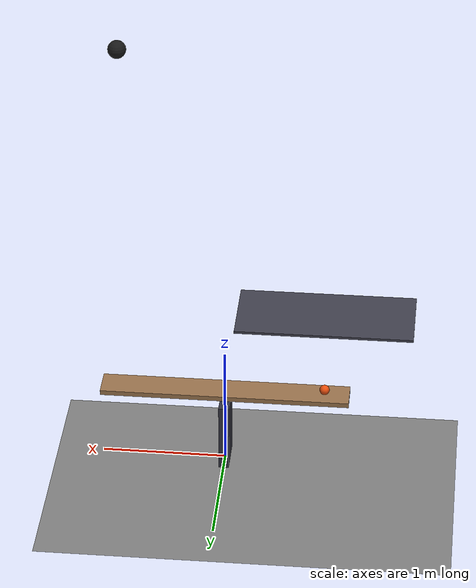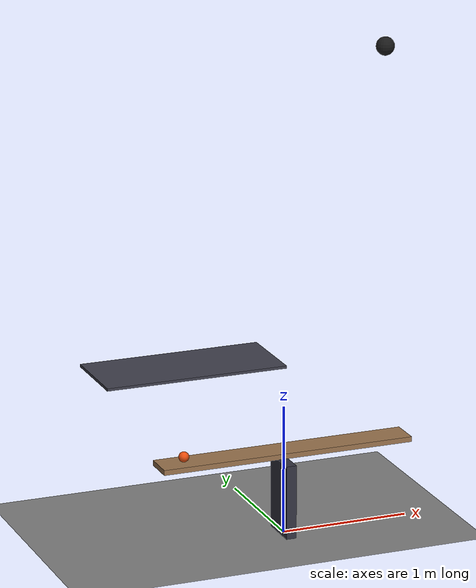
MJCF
<mujoco model="gravity_seesaw_launch">
  <compiler angle="radian"/>
  <option timestep="0.002"/>
  <worldbody>
    <geom name="floor" type="plane" size="8 8 0.1" friction="0.8 0.005 0.002"/>
    <body name="support">
      <geom name="support" type="box" pos="0 0 0.29" size="0.04 0.16 0.29" rgba="0.2 0.2 0.25 1"/>
    </body>
    <body name="seesaw" pos="0 0 0.65">
      <joint name="seesaw_hinge" type="hinge" pos="0 0 0" axis="0 1 0" limited="true" range="0 0.523599" damping="0.005" armature="0.001"/>
      <geom name="seesaw" type="box" pos="0 0 0" size="1 0.12 0.02" mass="0.25" friction="0.5 0.005 0.002" solref="0.01 1" rgba="0.6 0.45 0.3 1"/>
    </body>
    <body name="ball" pos="-0.8 0 0.71">
      <freejoint/>
      <geom name="ball" type="sphere" pos="0 0 0" size="0.04" mass="0.1" condim="6" friction="0.5 0.005 0.002" solref="0.01 1" rgba="0.9 0.3 0.05 1"/>
    </body>
    <body name="weight" pos="0.8 0 3.7">
      <freejoint/>
      <geom name="weight" type="sphere" pos="0 0 0" size="0.07" mass="1" condim="6" friction="0.5 0.005 0.002" solref="0.01 1" rgba="0.1 0.1 0.1 1"/>
    </body>
    <body name="height marker">
      <geom name="height marker" type="box" pos="-0.8 0 1.42" size="0.7 0.3 0.01" solref="0.01 1" rgba="0.25 0.25 0.3 1"/>
    </body>
  </worldbody>
  <keyframe>
    <key name="start" qpos="0 -0.8 0 0.71 1 0 0 0 0.8 0 3.7 1 0 0 0" qvel="0 0 0 0 0 0 0 0 0 0 0 0 0"/>
  </keyframe>
</mujoco>
